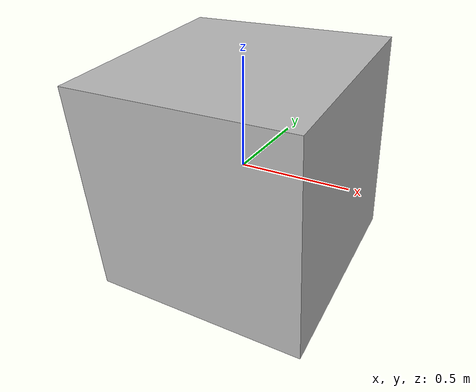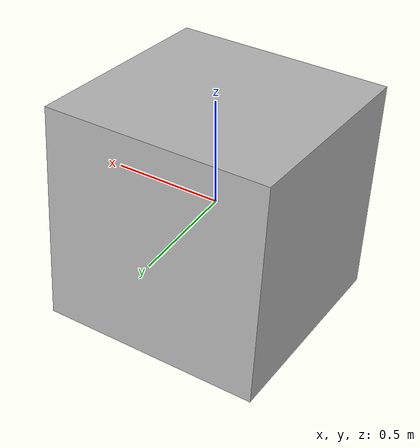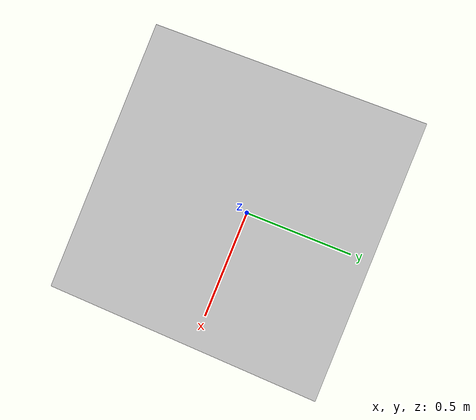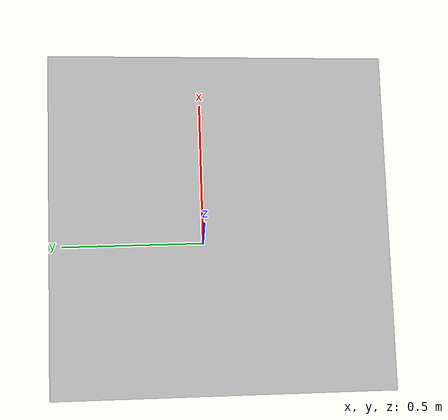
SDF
<sdf version="1.6">
  <world name="buoyancy">

    <physics name="1ms" type="ode">
      <max_step_size>0.001</max_step_size>
      <real_time_factor>1</real_time_factor>
    </physics>
    <plugin
      filename="ignition-gazebo-physics-system"
      name="ignition::gazebo::systems::Physics">
    </plugin>
    <plugin
      filename="ignition-gazebo-user-commands-system"
      name="ignition::gazebo::systems::UserCommands">
    </plugin>
    <plugin
      filename="ignition-gazebo-scene-broadcaster-system"
      name="ignition::gazebo::systems::SceneBroadcaster">
    </plugin>
    <plugin
      filename="ignition-gazebo-buoyancy-system"
      name="ignition::gazebo::systems::Buoyancy">
      <uniform_fluid_density>1000</uniform_fluid_density>
    </plugin>

    <light type="directional" name="sun">
      <cast_shadows>true</cast_shadows>
      <pose>0 0 10 0 0 0</pose>
      <diffuse>1 1 1 1</diffuse>
      <specular>0.5 0.5 0.5 1</specular>
      <attenuation>
        <range>1000</range>
        <constant>0.9</constant>
        <linear>0.01</linear>
        <quadratic>0.001</quadratic>
      </attenuation>
      <direction>-0.5 0.1 -0.9</direction>
    </light>

    <model name='submarine'>
      <pose>0 0 0 0.1 0 0</pose>
      <link name='body'>

        <inertial>
          <mass>1000</mass>
          <inertia>
            <ixx>86.28907821859966</ixx>
            <ixy>0</ixy>
            <ixz>0</ixz>
            <iyy>86.28907821859966</iyy>
            <iyz>0</iyz>
            <izz>5.026548245743671</izz>
          </inertia>
        </inertial>

        <collision name='body_collision'>
          <pose>0 0 0.08 0 0 0</pose>
          <geometry>
            <box>1 1 1</box>
          </geometry>
        </collision>

        <visual name='body_visual'>
          <geometry>
            <box>
              <size>1 1 1</size>
            </box>
          </geometry>
        </visual>
      </link>
    </model>
  </world>
</sdf>
